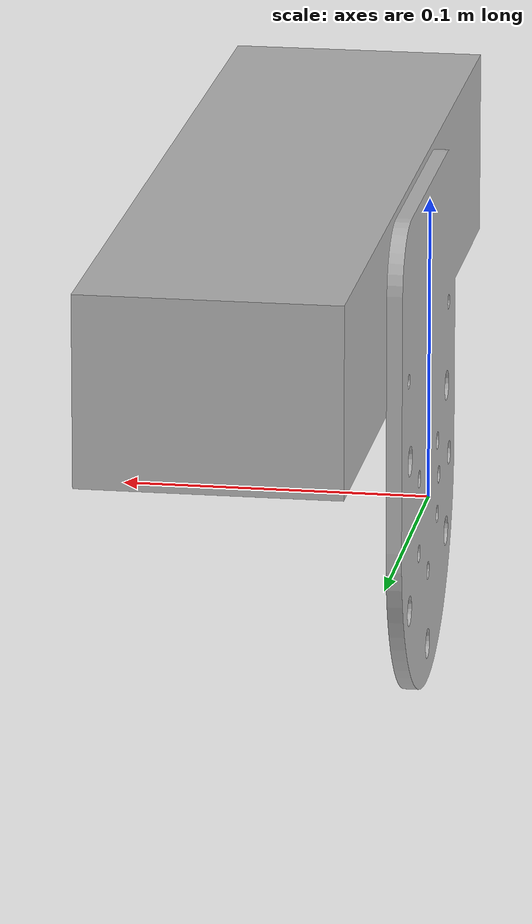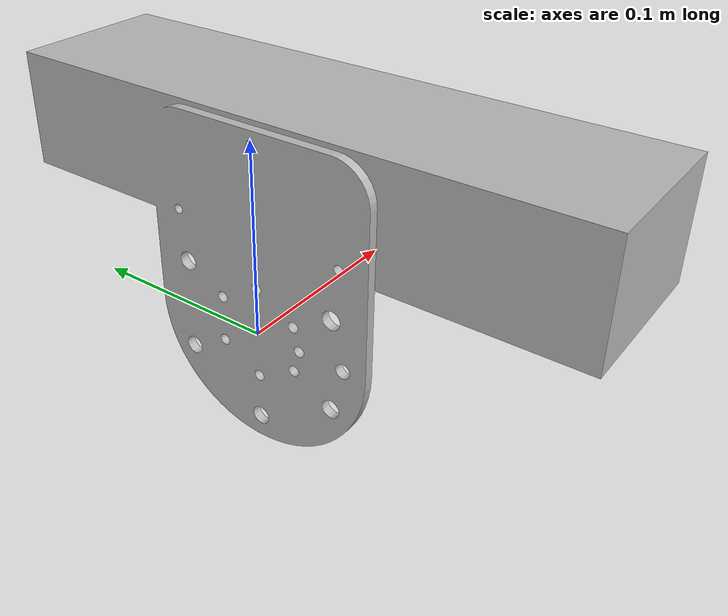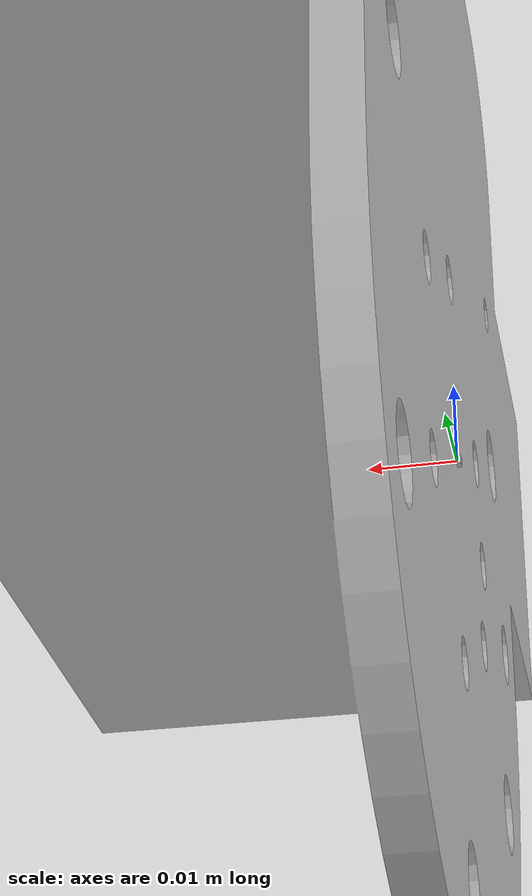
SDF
<?xml version='1.0'?>
<sdf version='1.6'>
    <model name="trispector">
        <static>true</static>

        <link name="eff_frame">

        </link>

        <link name="trispector">
            <pose>0 0 0 0 0 0</pose>
            <inertial>
                <mass>1.9</mass>
                <inertia>
                    <ixx>0.00001267970</ixx>
                    <ixy>0.00000000167</ixy>
                    <ixz>-0.00000018356</ixz>
                    <iyy>0.00000182174</iyy>
                    <iyz>-0.00000000478</iyz>
                    <izz>0.00001283206</izz>
                </inertia>
            </inertial>

            <collision name="collision">
                <geometry>
                    <mesh>
                        <uri>model://trispector/meshes/trispector_with_plate_bounding_box.stl</uri>
                    </mesh>
                </geometry>
            </collision>

            <visual name="visual">
                <geometry>
                    <mesh>
                        <uri>model://trispector/meshes/trispector_with_plate.stl</uri>
                    </mesh>
                </geometry>
            </visual>
        </link>

        <joint name="eff_frame_to_trispector" type="fixed">
            <pose>0 0 0 0 0 0</pose>
            <child>trispector</child>
            <parent>eff_frame</parent>
        </joint>

        <link name="tcp">

        </link>

        <joint name="joint_tcp" type="fixed">
            <pose>0.088 0.0 0.075 1.5708 0 1.5708</pose>
            <child>tcp</child>
            <parent>trispector</parent>
        </joint>

        <link name="scan_area_origin">

        </link>

        <joint name="joint_scan_area_origin" type="fixed">
            <pose>0.149 0.0 -0.04225 1.5708 -0.7854 -1.5708</pose>
            <child>scan_area_origin</child>
            <parent>tcp</parent>
        </joint>

        <link name="scan_area">
            <pose>0 0 0 0 0 0</pose>
            <inertial>
                <inertia>
                    <ixx>0</ixx>
                    <ixy>0</ixy>
                    <ixz>0</ixz>
                    <iyy>0</iyy>
                    <iyz>0</iyz>
                    <izz>0</izz>
                </inertia>
            </inertial>

            <collision name="collision">
                <geometry>
                    <box>
                        <size>0.001 0.001 0.001</size>
                    </box>
                </geometry>
            </collision>

            <visual name="visual">
                <geometry>
                    <box>
                        <size>0.001 0.001 0.001</size>
                    </box>
                </geometry>
            </visual>

            <sensor name="camera" type="camera">
                <always_on>1</always_on>
                <update_rate>40</update_rate>
                <visualize>1</visualize>
                <camera>
                    <horizontal_fov>0.3</horizontal_fov>                    <!-- atan(330 / (291 + 800)) -->
                    <image>
                        <width>790</width>
                        <height>100</height>
                    </image>
                    <clip>
                        <near>0.291</near>
                        <far>1.091</far>
                    </clip>
                </camera>
                <plugin name="camera_controller" filename="libgazebo_ros_camera.so">
                    <alwaysOn>true</alwaysOn>
                    <updateRate>0.0</updateRate>
                    <cameraName>trispector/camera1</cameraName>
                    <imageTopicName>image_raw</imageTopicName>
                    <cameraInfoTopicName>camera_info</cameraInfoTopicName>
                    <frameName>camera_link_optical</frameName>
                    <hackBaseline>0.0</hackBaseline>
                    <distortionK1>0.0</distortionK1>
                    <distortionK2>0.0</distortionK2>
                    <distortionK3>0.0</distortionK3>
                    <distortionT1>0.0</distortionT1>
                    <distortionT2>0.0</distortionT2>
                    <CxPrime>0</CxPrime>
                    <Cx>0.0</Cx>
                    <Cy>0.0</Cy>
                    <focalLength>0.0</focalLength>
                </plugin>
            </sensor>
        </link>

        <link name="laser_area">
            <pose>0 0 0 0 0 0</pose>
            <inertial>
                <inertia>
                    <ixx>0</ixx>
                    <ixy>0</ixy>
                    <ixz>0</ixz>
                    <iyy>0</iyy>
                    <iyz>0</iyz>
                    <izz>0</izz>
                </inertia>
            </inertial>

            <collision name="collision">
                <geometry>
                    <box>
                        <size>0.001 0.001 0.001</size>
                    </box>
                </geometry>
            </collision>

            <visual name="visual">
                <geometry>
                    <box>
                        <size>0.001 0.001 0.001</size>
                    </box>
                </geometry>
            </visual>

            <sensor type="gpu_ray" name="laser_sensor">
                <pose>0 0 0 0 0 0</pose>
                <visualize>true</visualize>
                <update_rate>40</update_rate>
                <ray>
                    <scan>
                        <horizontal>
                            <samples>720</samples>
                            <resolution>1</resolution>
                            <min_angle>-0.15</min_angle>
                            <max_angle>0.15</max_angle>
                        </horizontal>
                    </scan>
                    <range>
                        <min>0.10</min>
                        <max>1.091</max>
                        <resolution>0.01</resolution>
                    </range>
                    <noise>
                        <type>gaussian</type>
                        <mean>0.0</mean>
                        <stddev>0.003</stddev>
                    </noise>
                </ray>
                <plugin name="gazebo_ros_head_hokuyo_controller" filename="libgazebo_ros_gpu_laser.so">
                    <topicName>/laser/scan</topicName>
                    <frameName>laser_link</frameName>
                </plugin>
            </sensor>
        </link>

        <joint name="origin_to_scan_area" type="fixed">
            <pose>0 0 0 0 0 0</pose>
            <child>scan_area</child>
            <parent>scan_area_origin</parent>
        </joint>

        <joint name="origin_to_laser_area" type="fixed">
            <pose>0 0 0 0 0 0</pose>
            <child>laser_area</child>
            <parent>scan_area_origin</parent>
        </joint>

    </model>
</sdf>
